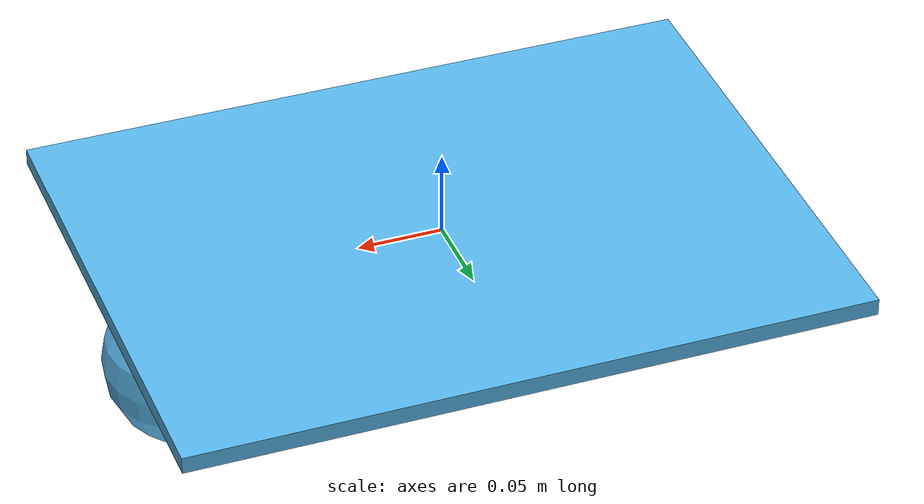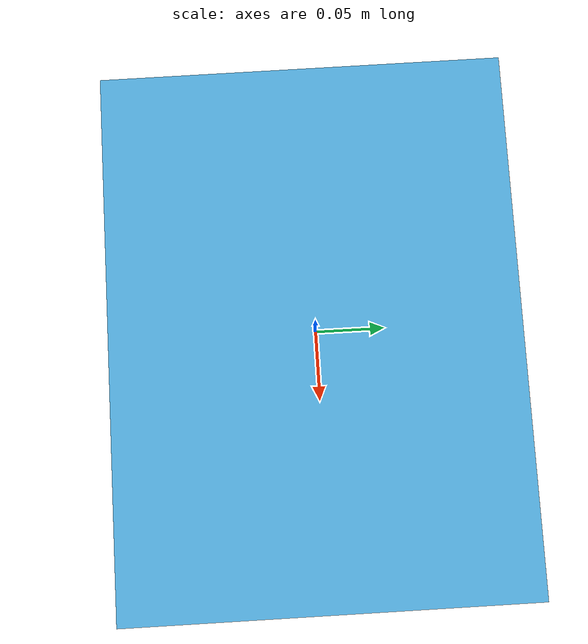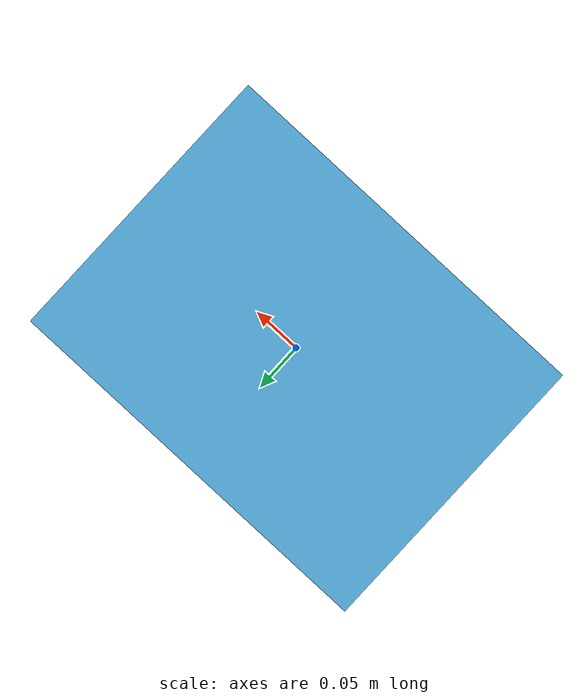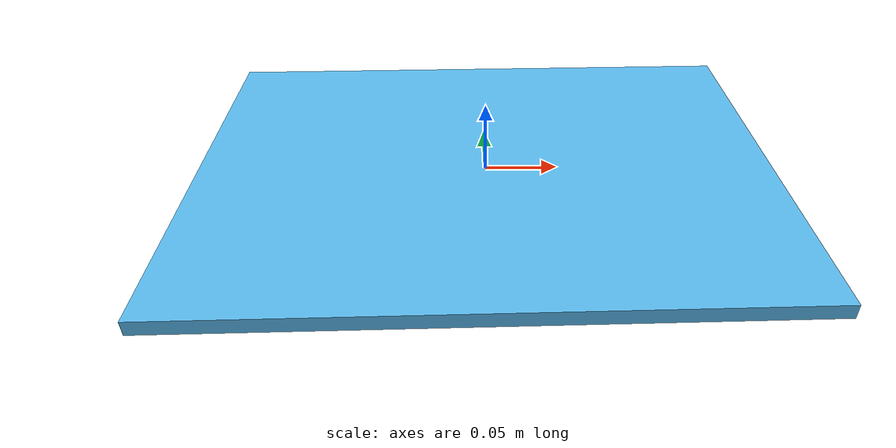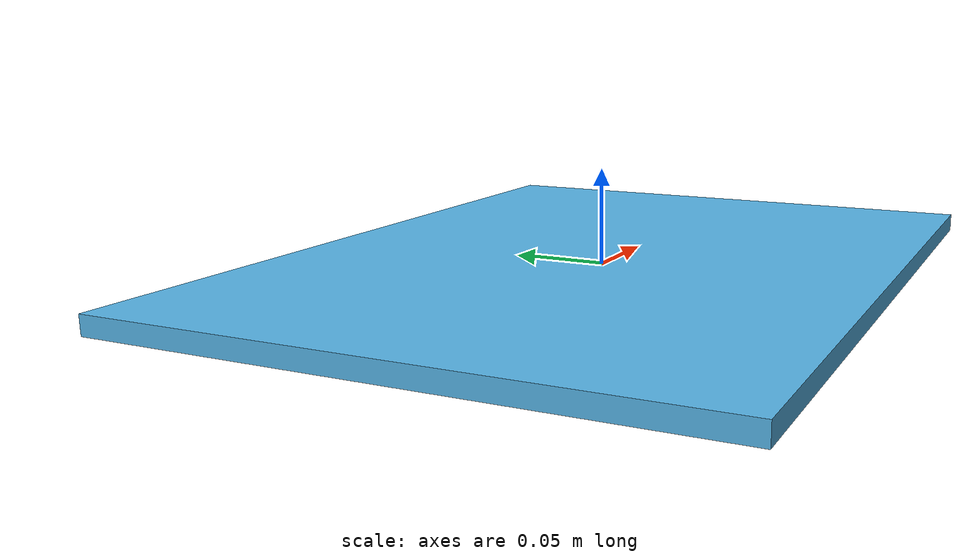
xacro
<?xml version='1.0'?>
<robot name="Robot">

  <link name="base_footprint"></link>

  <joint name="base_footprint_joint" type="fixed">
    <origin xyz="0 0 0" rpy="0 0 0" />
    <parent link="base_footprint"/>
    <child link="chassis" />
  </joint>

  <link name='chassis'>
    <pose>0 0 0.1 0 0 0</pose>

    <inertial>
      <mass value="3"/>
      <origin xyz="0.0 0 0" rpy=" 0 0 0"/>
      <inertia
          ixx="0.1" ixy="0" ixz="0"
          iyy="0.1" iyz="0"
          izz="0.1"
      />
    </inertial>

    <collision name='collision'>
      <origin xyz="0 0 0" rpy=" 0 0 0"/>
      <geometry>
        <box size=".4 .3 .01"/>
      </geometry>
    </collision>

    <visual name='chassis_visual'>
      <origin xyz="0 0 0" rpy=" 0 0 0"/>
      <geometry>
        <box size=".4 .3 .01"/>
      </geometry>
    </visual>

    <collision name='front_caster_collision'>
      <origin xyz="0.15 0 -0.05" rpy=" 0 0 0"/>
      <geometry>
        <sphere radius="0.0499"/>
      </geometry>
    </collision>

    <visual name='front_caster_visual'>
      <origin xyz="0.15 0 -0.05" rpy=" 0 0 0"/>
      <geometry>
        <sphere radius="0.05"/>
      </geometry>
    </visual>

  </link>

</robot>
